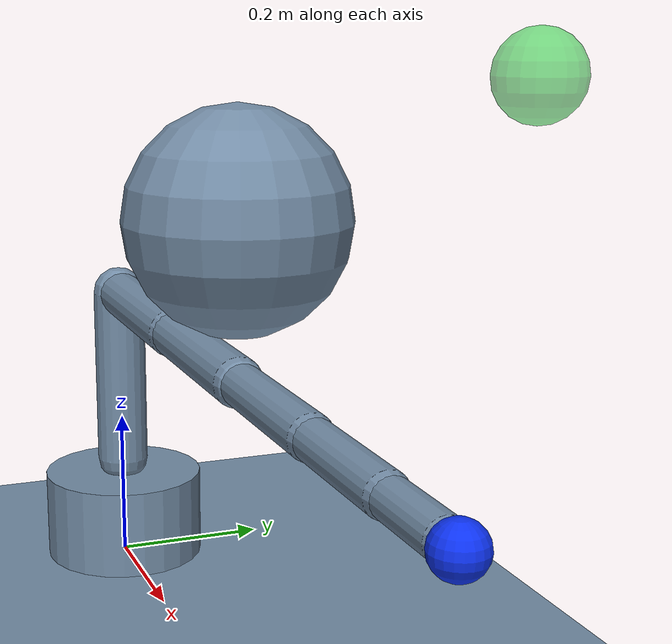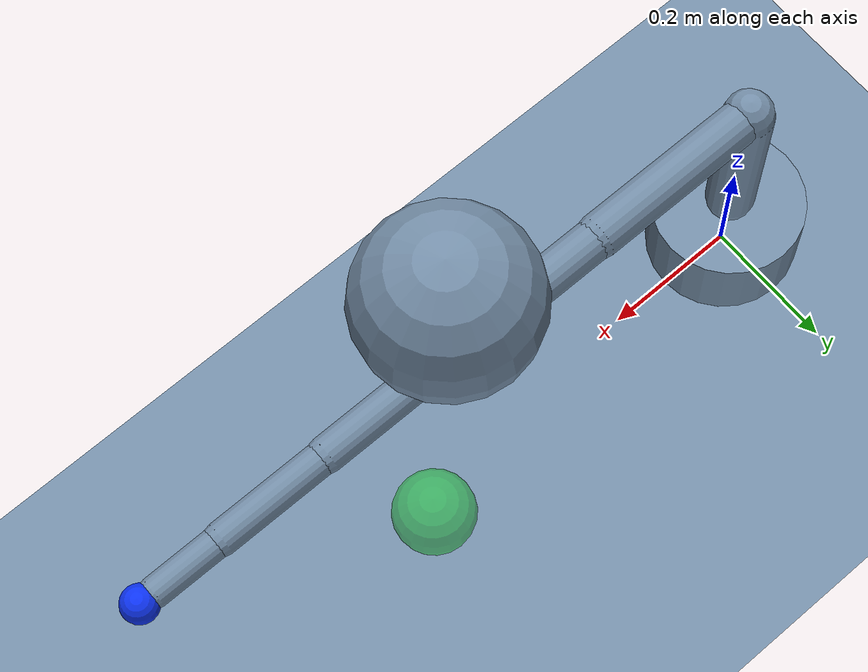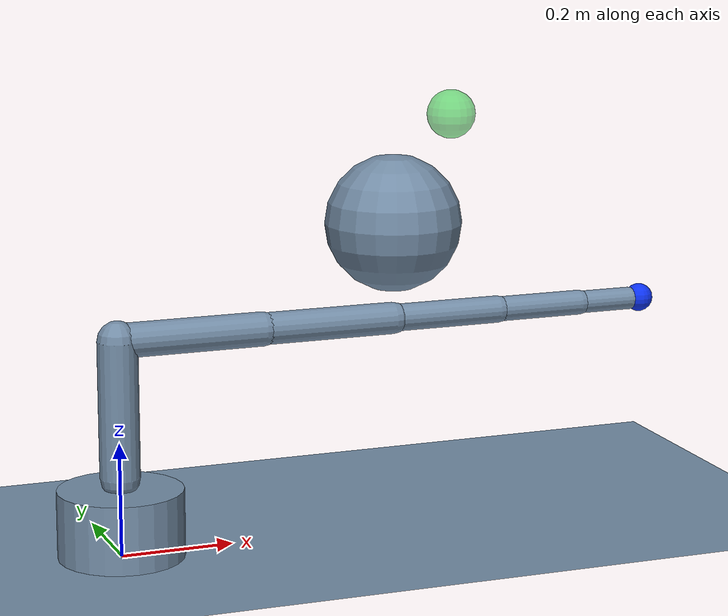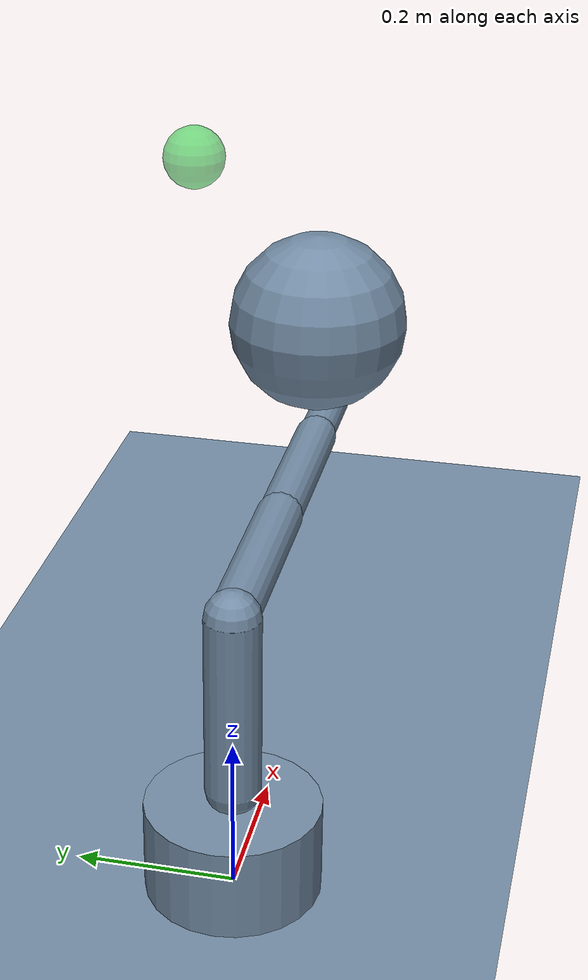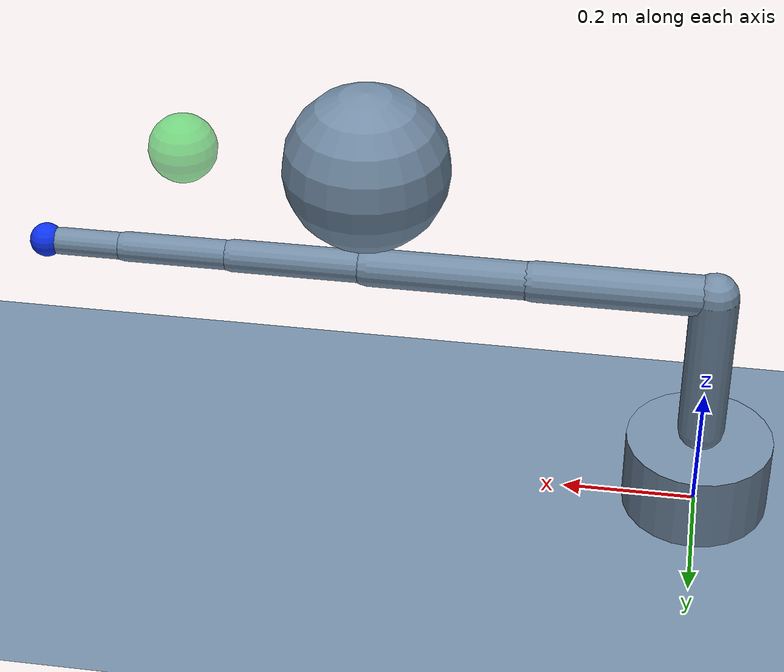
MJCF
<mujoco model="six_dof_arm_obstacle">
  <compiler angle="radian" autolimits="true"/>

  <option timestep="0.01" gravity="0 0 -9.81" integrator="RK4"/>

  <default>
    <joint damping="1.2" armature="0.02" limited="true"/>
    <geom condim="4" friction="0.8 0.02 0.002" rgba="0.45 0.55 0.65 1"/>
    <motor ctrllimited="true" ctrlrange="-1 1"/>
  </default>

  <asset>
    <texture name="grid" type="2d" builtin="checker" rgb1="0.18 0.18 0.18" rgb2="0.24 0.24 0.24" width="256" height="256"/>
    <material name="grid" texture="grid" texrepeat="4 4" reflectance="0.15"/>
    <material name="arm" rgba="0.38 0.52 0.68 1"/>
    <material name="joint" rgba="0.16 0.17 0.18 1"/>
    <material name="target" rgba="0.1 0.8 0.2 0.55"/>
    <material name="obstacle" rgba="0.9 0.18 0.12 0.85"/>
  </asset>

  <worldbody>
    <light pos="0 0 3.5" dir="0 0 -1"/>
    <camera name="track" pos="1.8 -2.0 1.4" xyaxes="0.75 0.66 0 -0.32 0.36 0.88"/>
    <geom name="floor" type="plane" size="2.2 2.2 0.01" material="grid"/>

    <body name="obstacle" pos="0.50 0.00 0.55">
      <geom name="obstacle_geom" type="sphere" size="0.12" material="obstacle"/>
      <site name="obstacle_site" type="sphere" size="0.012" rgba="1 1 1 1"/>
    </body>

    <body name="target" pos="0.70 0.22 0.70">
      <site name="target_site" type="sphere" size="0.045" material="target"/>
    </body>

    <body name="base" pos="0 0 0.06">
      <geom name="base_geom" type="cylinder" size="0.11 0.06" material="joint"/>
      <body name="link1" pos="0 0 0.08">
        <joint name="j1" type="hinge" axis="0 0 1" range="-3.14 3.14"/>
        <geom name="link1_geom" type="capsule" fromto="0 0 0 0 0 0.24" size="0.035" material="arm"/>
        <body name="link2" pos="0 0 0.24">
          <joint name="j2" type="hinge" axis="0 1 0" range="-1.8 1.8"/>
          <geom name="link2_geom" type="capsule" fromto="0 0 0 0.26 0 0" size="0.03" material="arm"/>
          <body name="link3" pos="0.26 0 0">
            <joint name="j3" type="hinge" axis="0 1 0" range="-2.2 2.2"/>
            <geom name="link3_geom" type="capsule" fromto="0 0 0 0.24 0 0" size="0.028" material="arm"/>
            <body name="link4" pos="0.24 0 0">
              <joint name="j4" type="hinge" axis="1 0 0" range="-3.14 3.14"/>
              <geom name="link4_geom" type="capsule" fromto="0 0 0 0.20 0 0" size="0.024" material="arm"/>
              <body name="link5" pos="0.20 0 0">
                <joint name="j5" type="hinge" axis="0 1 0" range="-2.2 2.2"/>
                <geom name="link5_geom" type="capsule" fromto="0 0 0 0.16 0 0" size="0.022" material="arm"/>
                <body name="link6" pos="0.16 0 0">
                  <joint name="j6" type="hinge" axis="1 0 0" range="-3.14 3.14"/>
                  <geom name="link6_geom" type="capsule" fromto="0 0 0 0.10 0 0" size="0.02" material="arm"/>
                  <site name="ee_site" pos="0.12 0 0" type="sphere" size="0.025" rgba="0.05 0.2 0.95 1"/>
                </body>
              </body>
            </body>
          </body>
        </body>
      </body>
    </body>
  </worldbody>

  <actuator>
    <motor name="m1" joint="j1" gear="45"/>
    <motor name="m2" joint="j2" gear="45"/>
    <motor name="m3" joint="j3" gear="38"/>
    <motor name="m4" joint="j4" gear="25"/>
    <motor name="m5" joint="j5" gear="22"/>
    <motor name="m6" joint="j6" gear="16"/>
  </actuator>
</mujoco>
